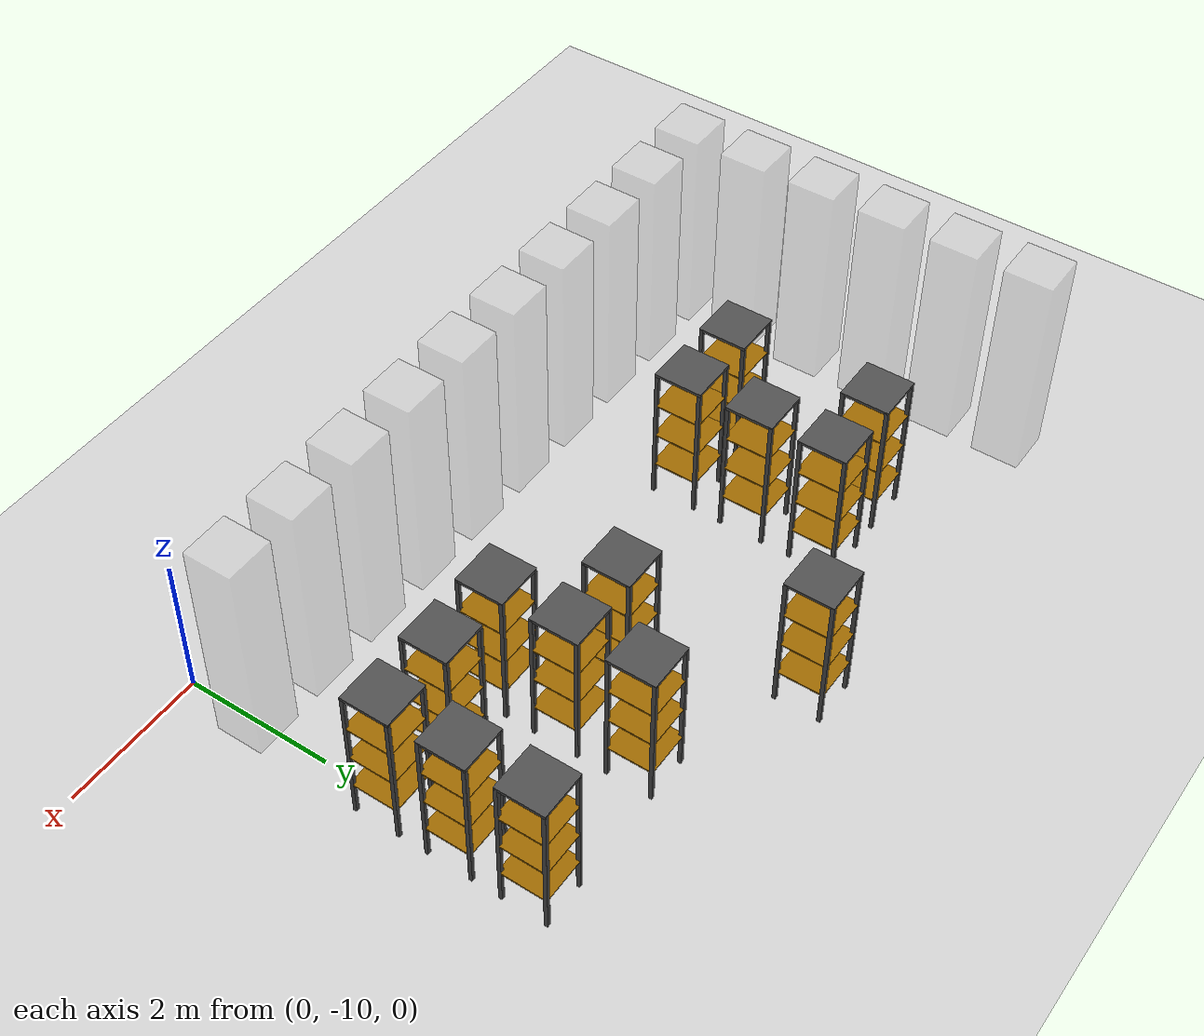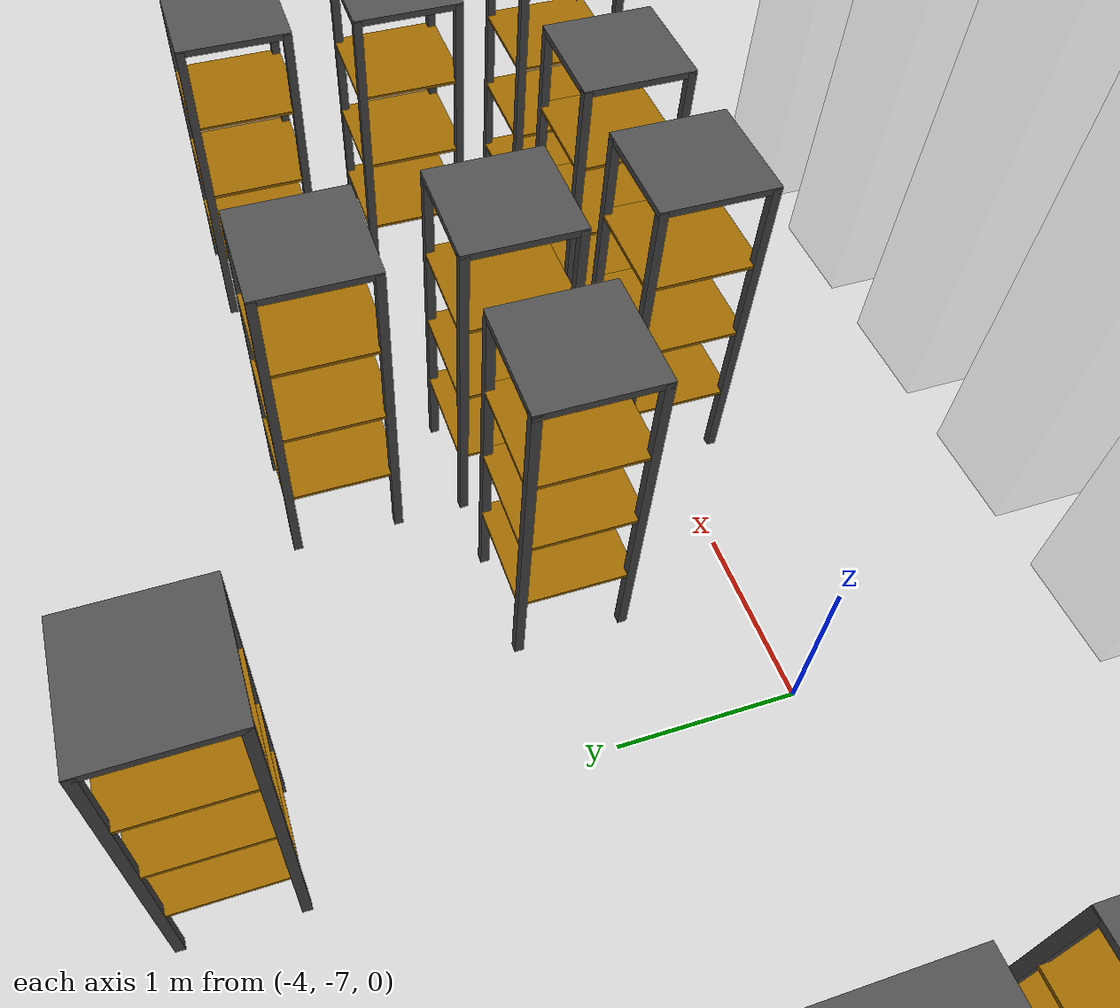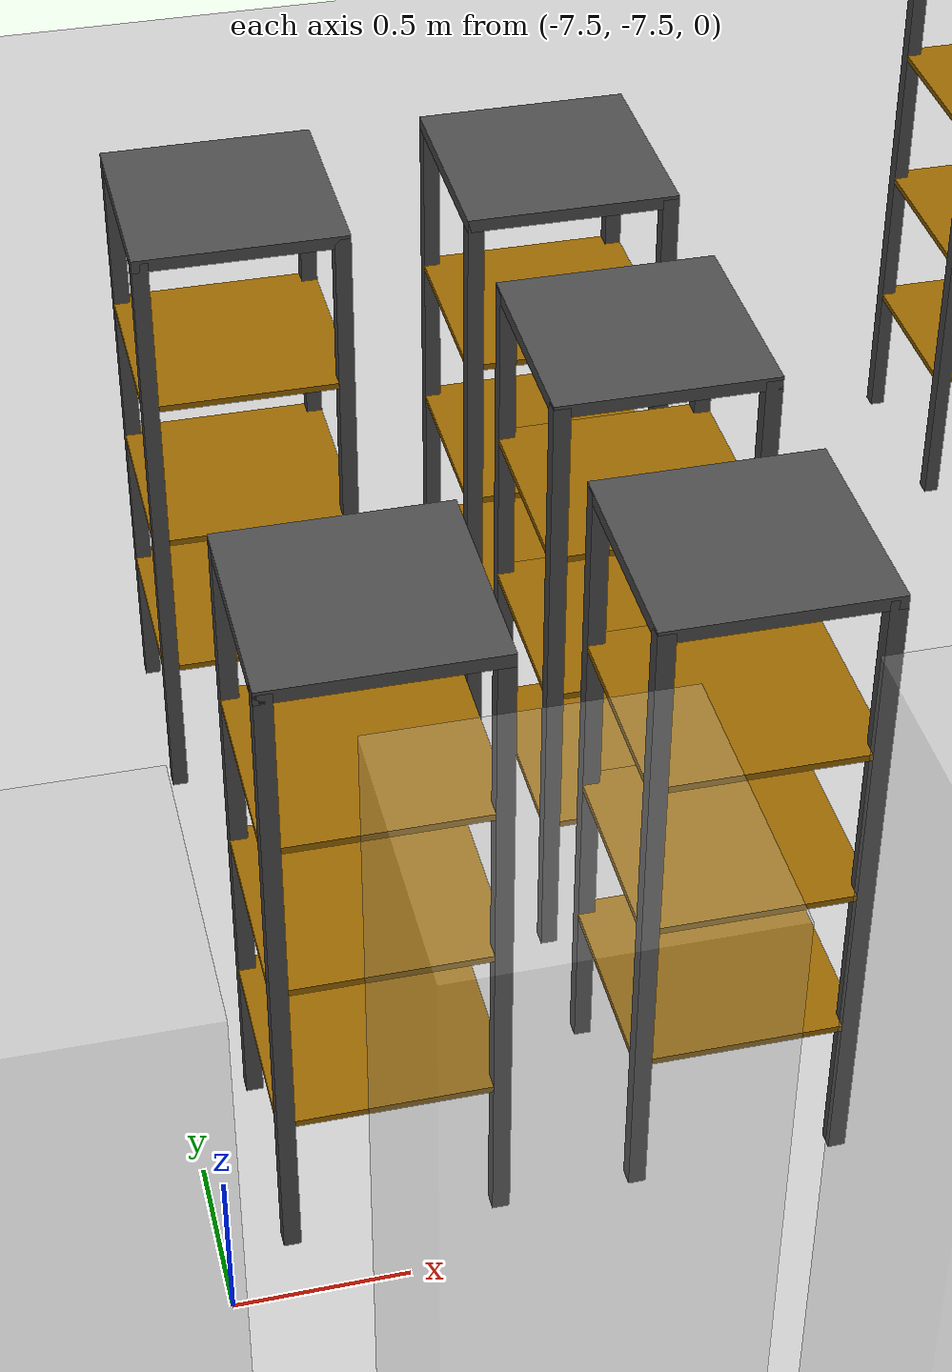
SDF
<sdf version="1.6">
 <world name="default">
  <model name="ground_plane">
   <static>1</static>
   <link name="link">
    <collision name="collision">
     <geometry><plane><normal>0 0 1</normal><size>50 50</size></plane></geometry>
     <surface><friction><ode><mu>100</mu><mu2>50</mu2></ode></friction></surface>
    </collision>
    <visual name="visual">
     <cast_shadows>0</cast_shadows>
     <geometry><plane><normal>0 0 1</normal><size>100 100</size></plane></geometry>
     <material>
      <script><uri>file://media/materials/scripts/gazebo.material</uri><name>Gazebo/Grey</name></script>
     </material>
    </visual>
    <velocity_decay><linear>0</linear><angular>0</angular></velocity_decay>
   </link>
  </model>
  <model name="pole_0_0">
   <static>1</static>
   <link name="main_block">
    <pose>0 0 1.5 0 -0 0</pose>
    <collision name="collision"><geometry><box><size>0.65 0.65 3</size></box></geometry></collision>
    <visual name="visual">
     <geometry><box><size>0.65 0.65 3</size></box></geometry>
     <material><ambient>0.5 0.5 0.5 0.25</ambient><diffuse>0.75 0.75 0.75 0.25</diffuse></material>
    </visual>
   </link>
   <pose>-9 -9 0 0 -0 0</pose>
  </model>
  <model name="pole_0_1">
   <static>1</static>
   <link name="main_block">
    <pose>0 0 1.5 0 -0 0</pose>
    <collision name="collision"><geometry><box><size>0.65 0.65 3</size></box></geometry></collision>
    <visual name="visual">
     <geometry><box><size>0.65 0.65 3</size></box></geometry>
     <material><ambient>0.5 0.5 0.5 0.25</ambient><diffuse>0.75 0.75 0.75 0.25</diffuse></material>
    </visual>
   </link>
   <pose>-8 -9 0 0 -0 0</pose>
  </model>
  <model name="pole_0_2">
   <static>1</static>
   <link name="main_block">
    <pose>0 0 1.5 0 -0 0</pose>
    <collision name="collision"><geometry><box><size>0.65 0.65 3</size></box></geometry></collision>
    <visual name="visual">
     <geometry><box><size>0.65 0.65 3</size></box></geometry>
     <material><ambient>0.5 0.5 0.5 0.25</ambient><diffuse>0.75 0.75 0.75 0.25</diffuse></material>
    </visual>
   </link>
   <pose>-7 -9 0 0 -0 0</pose>
  </model>
  <model name="pole_0_3">
   <static>1</static>
   <link name="main_block">
    <pose>0 0 1.5 0 -0 0</pose>
    <collision name="collision"><geometry><box><size>0.65 0.65 3</size></box></geometry></collision>
    <visual name="visual">
     <geometry><box><size>0.65 0.65 3</size></box></geometry>
     <material><ambient>0.5 0.5 0.5 0.25</ambient><diffuse>0.75 0.75 0.75 0.25</diffuse></material>
    </visual>
   </link>
   <pose>-6 -9 0 0 -0 0</pose>
  </model>
  <model name="pole_0_4">
   <static>1</static>
   <link name="main_block">
    <pose>0 0 1.5 0 -0 0</pose>
    <collision name="collision"><geometry><box><size>0.65 0.65 3</size></box></geometry></collision>
    <visual name="visual">
     <geometry><box><size>0.65 0.65 3</size></box></geometry>
     <material><ambient>0.5 0.5 0.5 0.25</ambient><diffuse>0.75 0.75 0.75 0.25</diffuse></material>
    </visual>
   </link>
   <pose>-5 -9 0 0 -0 0</pose>
  </model>
  <model name="pole_0_5">
   <static>1</static>
   <link name="main_block">
    <pose>0 0 1.5 0 -0 0</pose>
    <collision name="collision"><geometry><box><size>0.65 0.65 3</size></box></geometry></collision>
    <visual name="visual">
     <geometry><box><size>0.65 0.65 3</size></box></geometry>
     <material><ambient>0.5 0.5 0.5 0.25</ambient><diffuse>0.75 0.75 0.75 0.25</diffuse></material>
    </visual>
   </link>
   <pose>-4 -9 0 0 -0 0</pose>
  </model>
  <model name="pole_0_6">
   <static>1</static>
   <link name="main_block">
    <pose>0 0 1.5 0 -0 0</pose>
    <collision name="collision"><geometry><box><size>0.65 0.65 3</size></box></geometry></collision>
    <visual name="visual">
     <geometry><box><size>0.65 0.65 3</size></box></geometry>
     <material><ambient>0.5 0.5 0.5 0.25</ambient><diffuse>0.75 0.75 0.75 0.25</diffuse></material>
    </visual>
   </link>
   <pose>-3 -9 0 0 -0 0</pose>
  </model>
  <model name="pole_0_7">
   <static>1</static>
   <link name="main_block">
    <pose>0 0 1.5 0 -0 0</pose>
    <collision name="collision"><geometry><box><size>0.65 0.65 3</size></box></geometry></collision>
    <visual name="visual">
     <geometry><box><size>0.65 0.65 3</size></box></geometry>
     <material><ambient>0.5 0.5 0.5 0.25</ambient><diffuse>0.75 0.75 0.75 0.25</diffuse></material>
    </visual>
   </link>
   <pose>-2 -9 0 0 -0 0</pose>
  </model>
  <model name="pole_0_8">
   <static>1</static>
   <link name="main_block">
    <pose>0 0 1.5 0 -0 0</pose>
    <collision name="collision"><geometry><box><size>0.65 0.65 3</size></box></geometry></collision>
    <visual name="visual">
     <geometry><box><size>0.65 0.65 3</size></box></geometry>
     <material><ambient>0.5 0.5 0.5 0.25</ambient><diffuse>0.75 0.75 0.75 0.25</diffuse></material>
    </visual>
   </link>
   <pose>-1 -9 0 0 -0 0</pose>
  </model>
  <model name="pole_0_9">
   <static>1</static>
   <link name="main_block">
    <pose>0 0 1.5 0 -0 0</pose>
    <collision name="collision"><geometry><box><size>0.65 0.65 3</size></box></geometry></collision>
    <visual name="visual">
     <geometry><box><size>0.65 0.65 3</size></box></geometry>
     <material><ambient>0.5 0.5 0.5 0.25</ambient><diffuse>0.75 0.75 0.75 0.25</diffuse></material>
    </visual>
   </link>
   <pose>0 -9 0 0 -0 0</pose>
  </model>
  <model name="pole_1_0">
   <static>1</static>
   <link name="main_block">
    <pose>0 0 1.5 0 -0 0</pose>
    <collision name="collision"><geometry><box><size>0.65 0.65 3</size></box></geometry></collision>
    <visual name="visual">
     <geometry><box><size>0.65 0.65 3</size></box></geometry>
     <material><ambient>0.5 0.5 0.5 0.25</ambient><diffuse>0.75 0.75 0.75 0.25</diffuse></material>
    </visual>
   </link>
   <pose>-9 -8 0 0 -0 0</pose>
  </model>
  <model name="pole_2_0">
   <static>1</static>
   <link name="main_block">
    <pose>0 0 1.5 0 -0 0</pose>
    <collision name="collision"><geometry><box><size>0.65 0.65 3</size></box></geometry></collision>
    <visual name="visual">
     <geometry><box><size>0.65 0.65 3</size></box></geometry>
     <material><ambient>0.5 0.5 0.5 0.25</ambient><diffuse>0.75 0.75 0.75 0.25</diffuse></material>
    </visual>
   </link>
   <pose>-9 -7 0 0 -0 0</pose>
  </model>
  <model name="warehouse_shelf_2_2">
   <static>1</static>
   <link name="main_block">
    <pose>0 0 1.25 0 -0 0</pose>
    <collision name="collision"><geometry><box><size>0.65 0.65 1.5</size></box></geometry></collision>
   </link>
   <link name="leg_1">
    <pose>0.3 0.3 1 0 -0 0</pose>
    <collision name="collision"><geometry><box><size>0.05 0.05 2</size></box></geometry></collision>
    <visual name="visual">
     <geometry><box><size>0.05 0.05 2</size></box></geometry>
     <material><ambient>0.2 0.2 0.2 1</ambient><diffuse>0.3 0.3 0.3 1</diffuse></material>
    </visual>
   </link>
   <link name="leg_2">
    <pose>-0.3 0.3 1 0 -0 0</pose>
    <collision name="collision"><geometry><box><size>0.05 0.05 2</size></box></geometry></collision>
    <visual name="visual">
     <geometry><box><size>0.05 0.05 2</size></box></geometry>
     <material><ambient>0.2 0.2 0.2 1</ambient><diffuse>0.3 0.3 0.3 1</diffuse></material>
    </visual>
   </link>
   <link name="leg_3">
    <pose>-0.3 -0.3 1 0 -0 0</pose>
    <collision name="collision"><geometry><box><size>0.05 0.05 2</size></box></geometry></collision>
    <visual name="visual">
     <geometry><box><size>0.05 0.05 2</size></box></geometry>
     <material><ambient>0.2 0.2 0.2 1</ambient><diffuse>0.3 0.3 0.3 1</diffuse></material>
    </visual>
   </link>
   <link name="leg_4">
    <pose>0.3 -0.3 1 0 -0 0</pose>
    <collision name="collision"><geometry><box><size>0.05 0.05 2</size></box></geometry></collision>
    <visual name="visual">
     <geometry><box><size>0.05 0.05 2</size></box></geometry>
     <material><ambient>0.2 0.2 0.2 1</ambient><diffuse>0.3 0.3 0.3 1</diffuse></material>
    </visual>
   </link>
   <link name="shelf_0">
    <pose>0 0 0.49 0 -0 0</pose>
    <visual name="visual">
     <geometry><box><size>0.649 0.649 0.02</size></box></geometry>
     <material><ambient>0.2 0.05 0 1</ambient><diffuse>0.6 0.4 0 1</diffuse></material>
    </visual>
   </link>
   <link name="shelf_1">
    <pose>0 0 0.99 0 -0 0</pose>
    <visual name="visual">
     <geometry><box><size>0.649 0.649 0.02</size></box></geometry>
     <material><ambient>0.2 0.05 0 1</ambient><diffuse>0.6 0.4 0 1</diffuse></material>
    </visual>
   </link>
   <link name="shelf_2">
    <pose>0 0 1.49 0 -0 0</pose>
    <visual name="visual">
     <geometry><box><size>0.649 0.649 0.02</size></box></geometry>
     <material><ambient>0.2 0.05 0 1</ambient><diffuse>0.6 0.4 0 1</diffuse></material>
    </visual>
   </link>
   <link name="shelf_top">
    <pose>0 0 1.99 0 -0 0</pose>
    <visual name="visual">
     <geometry><box><size>0.65 0.65 0.04</size></box></geometry>
     <material><ambient>0.2 0.2 0.2 1</ambient><diffuse>0.3 0.3 0.3 1</diffuse></material>
    </visual>
   </link>
   <pose>-7 -7 0 0 -0 0</pose>
  </model>
  <model name="warehouse_shelf_2_3">
   <static>1</static>
   <link name="main_block">
    <pose>0 0 1.25 0 -0 0</pose>
    <collision name="collision"><geometry><box><size>0.65 0.65 1.5</size></box></geometry></collision>
   </link>
   <link name="leg_1">
    <pose>0.3 0.3 1 0 -0 0</pose>
    <collision name="collision"><geometry><box><size>0.05 0.05 2</size></box></geometry></collision>
    <visual name="visual">
     <geometry><box><size>0.05 0.05 2</size></box></geometry>
     <material><ambient>0.2 0.2 0.2 1</ambient><diffuse>0.3 0.3 0.3 1</diffuse></material>
    </visual>
   </link>
   <link name="leg_2">
    <pose>-0.3 0.3 1 0 -0 0</pose>
    <collision name="collision"><geometry><box><size>0.05 0.05 2</size></box></geometry></collision>
    <visual name="visual">
     <geometry><box><size>0.05 0.05 2</size></box></geometry>
     <material><ambient>0.2 0.2 0.2 1</ambient><diffuse>0.3 0.3 0.3 1</diffuse></material>
    </visual>
   </link>
   <link name="leg_3">
    <pose>-0.3 -0.3 1 0 -0 0</pose>
    <collision name="collision"><geometry><box><size>0.05 0.05 2</size></box></geometry></collision>
    <visual name="visual">
     <geometry><box><size>0.05 0.05 2</size></box></geometry>
     <material><ambient>0.2 0.2 0.2 1</ambient><diffuse>0.3 0.3 0.3 1</diffuse></material>
    </visual>
   </link>
   <link name="leg_4">
    <pose>0.3 -0.3 1 0 -0 0</pose>
    <collision name="collision"><geometry><box><size>0.05 0.05 2</size></box></geometry></collision>
    <visual name="visual">
     <geometry><box><size>0.05 0.05 2</size></box></geometry>
     <material><ambient>0.2 0.2 0.2 1</ambient><diffuse>0.3 0.3 0.3 1</diffuse></material>
    </visual>
   </link>
   <link name="shelf_0">
    <pose>0 0 0.49 0 -0 0</pose>
    <visual name="visual">
     <geometry><box><size>0.649 0.649 0.02</size></box></geometry>
     <material><ambient>0.2 0.05 0 1</ambient><diffuse>0.6 0.4 0 1</diffuse></material>
    </visual>
   </link>
   <link name="shelf_1">
    <pose>0 0 0.99 0 -0 0</pose>
    <visual name="visual">
     <geometry><box><size>0.649 0.649 0.02</size></box></geometry>
     <material><ambient>0.2 0.05 0 1</ambient><diffuse>0.6 0.4 0 1</diffuse></material>
    </visual>
   </link>
   <link name="shelf_2">
    <pose>0 0 1.49 0 -0 0</pose>
    <visual name="visual">
     <geometry><box><size>0.649 0.649 0.02</size></box></geometry>
     <material><ambient>0.2 0.05 0 1</ambient><diffuse>0.6 0.4 0 1</diffuse></material>
    </visual>
   </link>
   <link name="shelf_top">
    <pose>0 0 1.99 0 -0 0</pose>
    <visual name="visual">
     <geometry><box><size>0.65 0.65 0.04</size></box></geometry>
     <material><ambient>0.2 0.2 0.2 1</ambient><diffuse>0.3 0.3 0.3 1</diffuse></material>
    </visual>
   </link>
   <pose>-6 -7 0 0 -0 0</pose>
  </model>
  <model name="warehouse_shelf_2_7">
   <static>1</static>
   <link name="main_block">
    <pose>0 0 1.25 0 -0 0</pose>
    <collision name="collision"><geometry><box><size>0.65 0.65 1.5</size></box></geometry></collision>
   </link>
   <link name="leg_1">
    <pose>0.3 0.3 1 0 -0 0</pose>
    <collision name="collision"><geometry><box><size>0.05 0.05 2</size></box></geometry></collision>
    <visual name="visual">
     <geometry><box><size>0.05 0.05 2</size></box></geometry>
     <material><ambient>0.2 0.2 0.2 1</ambient><diffuse>0.3 0.3 0.3 1</diffuse></material>
    </visual>
   </link>
   <link name="leg_2">
    <pose>-0.3 0.3 1 0 -0 0</pose>
    <collision name="collision"><geometry><box><size>0.05 0.05 2</size></box></geometry></collision>
    <visual name="visual">
     <geometry><box><size>0.05 0.05 2</size></box></geometry>
     <material><ambient>0.2 0.2 0.2 1</ambient><diffuse>0.3 0.3 0.3 1</diffuse></material>
    </visual>
   </link>
   <link name="leg_3">
    <pose>-0.3 -0.3 1 0 -0 0</pose>
    <collision name="collision"><geometry><box><size>0.05 0.05 2</size></box></geometry></collision>
    <visual name="visual">
     <geometry><box><size>0.05 0.05 2</size></box></geometry>
     <material><ambient>0.2 0.2 0.2 1</ambient><diffuse>0.3 0.3 0.3 1</diffuse></material>
    </visual>
   </link>
   <link name="leg_4">
    <pose>0.3 -0.3 1 0 -0 0</pose>
    <collision name="collision"><geometry><box><size>0.05 0.05 2</size></box></geometry></collision>
    <visual name="visual">
     <geometry><box><size>0.05 0.05 2</size></box></geometry>
     <material><ambient>0.2 0.2 0.2 1</ambient><diffuse>0.3 0.3 0.3 1</diffuse></material>
    </visual>
   </link>
   <link name="shelf_0">
    <pose>0 0 0.49 0 -0 0</pose>
    <visual name="visual">
     <geometry><box><size>0.649 0.649 0.02</size></box></geometry>
     <material><ambient>0.2 0.05 0 1</ambient><diffuse>0.6 0.4 0 1</diffuse></material>
    </visual>
   </link>
   <link name="shelf_1">
    <pose>0 0 0.99 0 -0 0</pose>
    <visual name="visual">
     <geometry><box><size>0.649 0.649 0.02</size></box></geometry>
     <material><ambient>0.2 0.05 0 1</ambient><diffuse>0.6 0.4 0 1</diffuse></material>
    </visual>
   </link>
   <link name="shelf_2">
    <pose>0 0 1.49 0 -0 0</pose>
    <visual name="visual">
     <geometry><box><size>0.649 0.649 0.02</size></box></geometry>
     <material><ambient>0.2 0.05 0 1</ambient><diffuse>0.6 0.4 0 1</diffuse></material>
    </visual>
   </link>
   <link name="shelf_top">
    <pose>0 0 1.99 0 -0 0</pose>
    <visual name="visual">
     <geometry><box><size>0.65 0.65 0.04</size></box></geometry>
     <material><ambient>0.2 0.2 0.2 1</ambient><diffuse>0.3 0.3 0.3 1</diffuse></material>
    </visual>
   </link>
   <pose>-2 -7 0 0 -0 0</pose>
  </model>
  <model name="warehouse_shelf_2_8">
   <static>1</static>
   <link name="main_block">
    <pose>0 0 1.25 0 -0 0</pose>
    <collision name="collision"><geometry><box><size>0.65 0.65 1.5</size></box></geometry></collision>
   </link>
   <link name="leg_1">
    <pose>0.3 0.3 1 0 -0 0</pose>
    <collision name="collision"><geometry><box><size>0.05 0.05 2</size></box></geometry></collision>
    <visual name="visual">
     <geometry><box><size>0.05 0.05 2</size></box></geometry>
     <material><ambient>0.2 0.2 0.2 1</ambient><diffuse>0.3 0.3 0.3 1</diffuse></material>
    </visual>
   </link>
   <link name="leg_2">
    <pose>-0.3 0.3 1 0 -0 0</pose>
    <collision name="collision"><geometry><box><size>0.05 0.05 2</size></box></geometry></collision>
    <visual name="visual">
     <geometry><box><size>0.05 0.05 2</size></box></geometry>
     <material><ambient>0.2 0.2 0.2 1</ambient><diffuse>0.3 0.3 0.3 1</diffuse></material>
    </visual>
   </link>
   <link name="leg_3">
    <pose>-0.3 -0.3 1 0 -0 0</pose>
    <collision name="collision"><geometry><box><size>0.05 0.05 2</size></box></geometry></collision>
    <visual name="visual">
     <geometry><box><size>0.05 0.05 2</size></box></geometry>
     <material><ambient>0.2 0.2 0.2 1</ambient><diffuse>0.3 0.3 0.3 1</diffuse></material>
    </visual>
   </link>
   <link name="leg_4">
    <pose>0.3 -0.3 1 0 -0 0</pose>
    <collision name="collision"><geometry><box><size>0.05 0.05 2</size></box></geometry></collision>
    <visual name="visual">
     <geometry><box><size>0.05 0.05 2</size></box></geometry>
     <material><ambient>0.2 0.2 0.2 1</ambient><diffuse>0.3 0.3 0.3 1</diffuse></material>
    </visual>
   </link>
   <link name="shelf_0">
    <pose>0 0 0.49 0 -0 0</pose>
    <visual name="visual">
     <geometry><box><size>0.649 0.649 0.02</size></box></geometry>
     <material><ambient>0.2 0.05 0 1</ambient><diffuse>0.6 0.4 0 1</diffuse></material>
    </visual>
   </link>
   <link name="shelf_1">
    <pose>0 0 0.99 0 -0 0</pose>
    <visual name="visual">
     <geometry><box><size>0.649 0.649 0.02</size></box></geometry>
     <material><ambient>0.2 0.05 0 1</ambient><diffuse>0.6 0.4 0 1</diffuse></material>
    </visual>
   </link>
   <link name="shelf_2">
    <pose>0 0 1.49 0 -0 0</pose>
    <visual name="visual">
     <geometry><box><size>0.649 0.649 0.02</size></box></geometry>
     <material><ambient>0.2 0.05 0 1</ambient><diffuse>0.6 0.4 0 1</diffuse></material>
    </visual>
   </link>
   <link name="shelf_top">
    <pose>0 0 1.99 0 -0 0</pose>
    <visual name="visual">
     <geometry><box><size>0.65 0.65 0.04</size></box></geometry>
     <material><ambient>0.2 0.2 0.2 1</ambient><diffuse>0.3 0.3 0.3 1</diffuse></material>
    </visual>
   </link>
   <pose>-1 -7 0 0 -0 0</pose>
  </model>
  <model name="warehouse_shelf_2_9">
   <static>1</static>
   <link name="main_block">
    <pose>0 0 1.25 0 -0 0</pose>
    <collision name="collision"><geometry><box><size>0.65 0.65 1.5</size></box></geometry></collision>
   </link>
   <link name="leg_1">
    <pose>0.3 0.3 1 0 -0 0</pose>
    <collision name="collision"><geometry><box><size>0.05 0.05 2</size></box></geometry></collision>
    <visual name="visual">
     <geometry><box><size>0.05 0.05 2</size></box></geometry>
     <material><ambient>0.2 0.2 0.2 1</ambient><diffuse>0.3 0.3 0.3 1</diffuse></material>
    </visual>
   </link>
   <link name="leg_2">
    <pose>-0.3 0.3 1 0 -0 0</pose>
    <collision name="collision"><geometry><box><size>0.05 0.05 2</size></box></geometry></collision>
    <visual name="visual">
     <geometry><box><size>0.05 0.05 2</size></box></geometry>
     <material><ambient>0.2 0.2 0.2 1</ambient><diffuse>0.3 0.3 0.3 1</diffuse></material>
    </visual>
   </link>
   <link name="leg_3">
    <pose>-0.3 -0.3 1 0 -0 0</pose>
    <collision name="collision"><geometry><box><size>0.05 0.05 2</size></box></geometry></collision>
    <visual name="visual">
     <geometry><box><size>0.05 0.05 2</size></box></geometry>
     <material><ambient>0.2 0.2 0.2 1</ambient><diffuse>0.3 0.3 0.3 1</diffuse></material>
    </visual>
   </link>
   <link name="leg_4">
    <pose>0.3 -0.3 1 0 -0 0</pose>
    <collision name="collision"><geometry><box><size>0.05 0.05 2</size></box></geometry></collision>
    <visual name="visual">
     <geometry><box><size>0.05 0.05 2</size></box></geometry>
     <material><ambient>0.2 0.2 0.2 1</ambient><diffuse>0.3 0.3 0.3 1</diffuse></material>
    </visual>
   </link>
   <link name="shelf_0">
    <pose>0 0 0.49 0 -0 0</pose>
    <visual name="visual">
     <geometry><box><size>0.649 0.649 0.02</size></box></geometry>
     <material><ambient>0.2 0.05 0 1</ambient><diffuse>0.6 0.4 0 1</diffuse></material>
    </visual>
   </link>
   <link name="shelf_1">
    <pose>0 0 0.99 0 -0 0</pose>
    <visual name="visual">
     <geometry><box><size>0.649 0.649 0.02</size></box></geometry>
     <material><ambient>0.2 0.05 0 1</ambient><diffuse>0.6 0.4 0 1</diffuse></material>
    </visual>
   </link>
   <link name="shelf_2">
    <pose>0 0 1.49 0 -0 0</pose>
    <visual name="visual">
     <geometry><box><size>0.649 0.649 0.02</size></box></geometry>
     <material><ambient>0.2 0.05 0 1</ambient><diffuse>0.6 0.4 0 1</diffuse></material>
    </visual>
   </link>
   <link name="shelf_top">
    <pose>0 0 1.99 0 -0 0</pose>
    <visual name="visual">
     <geometry><box><size>0.65 0.65 0.04</size></box></geometry>
     <material><ambient>0.2 0.2 0.2 1</ambient><diffuse>0.3 0.3 0.3 1</diffuse></material>
    </visual>
   </link>
   <pose>0 -7 0 0 -0 0</pose>
  </model>
  <model name="pole_3_0">
   <static>1</static>
   <link name="main_block">
    <pose>0 0 1.5 0 -0 0</pose>
    <collision name="collision"><geometry><box><size>0.65 0.65 3</size></box></geometry></collision>
    <visual name="visual">
     <geometry><box><size>0.65 0.65 3</size></box></geometry>
     <material><ambient>0.5 0.5 0.5 0.25</ambient><diffuse>0.75 0.75 0.75 0.25</diffuse></material>
    </visual>
   </link>
   <pose>-9 -6 0 0 -0 0</pose>
  </model>
  <model name="warehouse_shelf_3_3">
   <static>1</static>
   <link name="main_block">
    <pose>0 0 1.25 0 -0 0</pose>
    <collision name="collision"><geometry><box><size>0.65 0.65 1.5</size></box></geometry></collision>
   </link>
   <link name="leg_1">
    <pose>0.3 0.3 1 0 -0 0</pose>
    <collision name="collision"><geometry><box><size>0.05 0.05 2</size></box></geometry></collision>
    <visual name="visual">
     <geometry><box><size>0.05 0.05 2</size></box></geometry>
     <material><ambient>0.2 0.2 0.2 1</ambient><diffuse>0.3 0.3 0.3 1</diffuse></material>
    </visual>
   </link>
   <link name="leg_2">
    <pose>-0.3 0.3 1 0 -0 0</pose>
    <collision name="collision"><geometry><box><size>0.05 0.05 2</size></box></geometry></collision>
    <visual name="visual">
     <geometry><box><size>0.05 0.05 2</size></box></geometry>
     <material><ambient>0.2 0.2 0.2 1</ambient><diffuse>0.3 0.3 0.3 1</diffuse></material>
    </visual>
   </link>
   <link name="leg_3">
    <pose>-0.3 -0.3 1 0 -0 0</pose>
    <collision name="collision"><geometry><box><size>0.05 0.05 2</size></box></geometry></collision>
    <visual name="visual">
     <geometry><box><size>0.05 0.05 2</size></box></geometry>
     <material><ambient>0.2 0.2 0.2 1</ambient><diffuse>0.3 0.3 0.3 1</diffuse></material>
    </visual>
   </link>
   <link name="leg_4">
    <pose>0.3 -0.3 1 0 -0 0</pose>
    <collision name="collision"><geometry><box><size>0.05 0.05 2</size></box></geometry></collision>
    <visual name="visual">
     <geometry><box><size>0.05 0.05 2</size></box></geometry>
     <material><ambient>0.2 0.2 0.2 1</ambient><diffuse>0.3 0.3 0.3 1</diffuse></material>
    </visual>
   </link>
   <link name="shelf_0">
    <pose>0 0 0.49 0 -0 0</pose>
    <visual name="visual">
     <geometry><box><size>0.649 0.649 0.02</size></box></geometry>
     <material><ambient>0.2 0.05 0 1</ambient><diffuse>0.6 0.4 0 1</diffuse></material>
    </visual>
   </link>
   <link name="shelf_1">
    <pose>0 0 0.99 0 -0 0</pose>
    <visual name="visual">
     <geometry><box><size>0.649 0.649 0.02</size></box></geometry>
     <material><ambient>0.2 0.05 0 1</ambient><diffuse>0.6 0.4 0 1</diffuse></material>
    </visual>
   </link>
   <link name="shelf_2">
    <pose>0 0 1.49 0 -0 0</pose>
    <visual name="visual">
     <geometry><box><size>0.649 0.649 0.02</size></box></geometry>
     <material><ambient>0.2 0.05 0 1</ambient><diffuse>0.6 0.4 0 1</diffuse></material>
    </visual>
   </link>
   <link name="shelf_top">
    <pose>0 0 1.99 0 -0 0</pose>
    <visual name="visual">
     <geometry><box><size>0.65 0.65 0.04</size></box></geometry>
     <material><ambient>0.2 0.2 0.2 1</ambient><diffuse>0.3 0.3 0.3 1</diffuse></material>
    </visual>
   </link>
   <pose>-6 -6 0 0 -0 0</pose>
  </model>
  <model name="warehouse_shelf_3_6">
   <static>1</static>
   <link name="main_block">
    <pose>0 0 1.25 0 -0 0</pose>
    <collision name="collision"><geometry><box><size>0.65 0.65 1.5</size></box></geometry></collision>
   </link>
   <link name="leg_1">
    <pose>0.3 0.3 1 0 -0 0</pose>
    <collision name="collision"><geometry><box><size>0.05 0.05 2</size></box></geometry></collision>
    <visual name="visual">
     <geometry><box><size>0.05 0.05 2</size></box></geometry>
     <material><ambient>0.2 0.2 0.2 1</ambient><diffuse>0.3 0.3 0.3 1</diffuse></material>
    </visual>
   </link>
   <link name="leg_2">
    <pose>-0.3 0.3 1 0 -0 0</pose>
    <collision name="collision"><geometry><box><size>0.05 0.05 2</size></box></geometry></collision>
    <visual name="visual">
     <geometry><box><size>0.05 0.05 2</size></box></geometry>
     <material><ambient>0.2 0.2 0.2 1</ambient><diffuse>0.3 0.3 0.3 1</diffuse></material>
    </visual>
   </link>
   <link name="leg_3">
    <pose>-0.3 -0.3 1 0 -0 0</pose>
    <collision name="collision"><geometry><box><size>0.05 0.05 2</size></box></geometry></collision>
    <visual name="visual">
     <geometry><box><size>0.05 0.05 2</size></box></geometry>
     <material><ambient>0.2 0.2 0.2 1</ambient><diffuse>0.3 0.3 0.3 1</diffuse></material>
    </visual>
   </link>
   <link name="leg_4">
    <pose>0.3 -0.3 1 0 -0 0</pose>
    <collision name="collision"><geometry><box><size>0.05 0.05 2</size></box></geometry></collision>
    <visual name="visual">
     <geometry><box><size>0.05 0.05 2</size></box></geometry>
     <material><ambient>0.2 0.2 0.2 1</ambient><diffuse>0.3 0.3 0.3 1</diffuse></material>
    </visual>
   </link>
   <link name="shelf_0">
    <pose>0 0 0.49 0 -0 0</pose>
    <visual name="visual">
     <geometry><box><size>0.649 0.649 0.02</size></box></geometry>
     <material><ambient>0.2 0.05 0 1</ambient><diffuse>0.6 0.4 0 1</diffuse></material>
    </visual>
   </link>
   <link name="shelf_1">
    <pose>0 0 0.99 0 -0 0</pose>
    <visual name="visual">
     <geometry><box><size>0.649 0.649 0.02</size></box></geometry>
     <material><ambient>0.2 0.05 0 1</ambient><diffuse>0.6 0.4 0 1</diffuse></material>
    </visual>
   </link>
   <link name="shelf_2">
    <pose>0 0 1.49 0 -0 0</pose>
    <visual name="visual">
     <geometry><box><size>0.649 0.649 0.02</size></box></geometry>
     <material><ambient>0.2 0.05 0 1</ambient><diffuse>0.6 0.4 0 1</diffuse></material>
    </visual>
   </link>
   <link name="shelf_top">
    <pose>0 0 1.99 0 -0 0</pose>
    <visual name="visual">
     <geometry><box><size>0.65 0.65 0.04</size></box></geometry>
     <material><ambient>0.2 0.2 0.2 1</ambient><diffuse>0.3 0.3 0.3 1</diffuse></material>
    </visual>
   </link>
   <pose>-3 -6 0 0 -0 0</pose>
  </model>
  <model name="warehouse_shelf_3_7">
   <static>1</static>
   <link name="main_block">
    <pose>0 0 1.25 0 -0 0</pose>
    <collision name="collision"><geometry><box><size>0.65 0.65 1.5</size></box></geometry></collision>
   </link>
   <link name="leg_1">
    <pose>0.3 0.3 1 0 -0 0</pose>
    <collision name="collision"><geometry><box><size>0.05 0.05 2</size></box></geometry></collision>
    <visual name="visual">
     <geometry><box><size>0.05 0.05 2</size></box></geometry>
     <material><ambient>0.2 0.2 0.2 1</ambient><diffuse>0.3 0.3 0.3 1</diffuse></material>
    </visual>
   </link>
   <link name="leg_2">
    <pose>-0.3 0.3 1 0 -0 0</pose>
    <collision name="collision"><geometry><box><size>0.05 0.05 2</size></box></geometry></collision>
    <visual name="visual">
     <geometry><box><size>0.05 0.05 2</size></box></geometry>
     <material><ambient>0.2 0.2 0.2 1</ambient><diffuse>0.3 0.3 0.3 1</diffuse></material>
    </visual>
   </link>
   <link name="leg_3">
    <pose>-0.3 -0.3 1 0 -0 0</pose>
    <collision name="collision"><geometry><box><size>0.05 0.05 2</size></box></geometry></collision>
    <visual name="visual">
     <geometry><box><size>0.05 0.05 2</size></box></geometry>
     <material><ambient>0.2 0.2 0.2 1</ambient><diffuse>0.3 0.3 0.3 1</diffuse></material>
    </visual>
   </link>
   <link name="leg_4">
    <pose>0.3 -0.3 1 0 -0 0</pose>
    <collision name="collision"><geometry><box><size>0.05 0.05 2</size></box></geometry></collision>
    <visual name="visual">
     <geometry><box><size>0.05 0.05 2</size></box></geometry>
     <material><ambient>0.2 0.2 0.2 1</ambient><diffuse>0.3 0.3 0.3 1</diffuse></material>
    </visual>
   </link>
   <link name="shelf_0">
    <pose>0 0 0.49 0 -0 0</pose>
    <visual name="visual">
     <geometry><box><size>0.649 0.649 0.02</size></box></geometry>
     <material><ambient>0.2 0.05 0 1</ambient><diffuse>0.6 0.4 0 1</diffuse></material>
    </visual>
   </link>
   <link name="shelf_1">
    <pose>0 0 0.99 0 -0 0</pose>
    <visual name="visual">
     <geometry><box><size>0.649 0.649 0.02</size></box></geometry>
     <material><ambient>0.2 0.05 0 1</ambient><diffuse>0.6 0.4 0 1</diffuse></material>
    </visual>
   </link>
   <link name="shelf_2">
    <pose>0 0 1.49 0 -0 0</pose>
    <visual name="visual">
     <geometry><box><size>0.649 0.649 0.02</size></box></geometry>
     <material><ambient>0.2 0.05 0 1</ambient><diffuse>0.6 0.4 0 1</diffuse></material>
    </visual>
   </link>
   <link name="shelf_top">
    <pose>0 0 1.99 0 -0 0</pose>
    <visual name="visual">
     <geometry><box><size>0.65 0.65 0.04</size></box></geometry>
     <material><ambient>0.2 0.2 0.2 1</ambient><diffuse>0.3 0.3 0.3 1</diffuse></material>
    </visual>
   </link>
   <pose>-2 -6 0 0 -0 0</pose>
  </model>
  <model name="warehouse_shelf_3_9">
   <static>1</static>
   <link name="main_block">
    <pose>0 0 1.25 0 -0 0</pose>
    <collision name="collision"><geometry><box><size>0.65 0.65 1.5</size></box></geometry></collision>
   </link>
   <link name="leg_1">
    <pose>0.3 0.3 1 0 -0 0</pose>
    <collision name="collision"><geometry><box><size>0.05 0.05 2</size></box></geometry></collision>
    <visual name="visual">
     <geometry><box><size>0.05 0.05 2</size></box></geometry>
     <material><ambient>0.2 0.2 0.2 1</ambient><diffuse>0.3 0.3 0.3 1</diffuse></material>
    </visual>
   </link>
   <link name="leg_2">
    <pose>-0.3 0.3 1 0 -0 0</pose>
    <collision name="collision"><geometry><box><size>0.05 0.05 2</size></box></geometry></collision>
    <visual name="visual">
     <geometry><box><size>0.05 0.05 2</size></box></geometry>
     <material><ambient>0.2 0.2 0.2 1</ambient><diffuse>0.3 0.3 0.3 1</diffuse></material>
    </visual>
   </link>
   <link name="leg_3">
    <pose>-0.3 -0.3 1 0 -0 0</pose>
    <collision name="collision"><geometry><box><size>0.05 0.05 2</size></box></geometry></collision>
    <visual name="visual">
     <geometry><box><size>0.05 0.05 2</size></box></geometry>
     <material><ambient>0.2 0.2 0.2 1</ambient><diffuse>0.3 0.3 0.3 1</diffuse></material>
    </visual>
   </link>
   <link name="leg_4">
    <pose>0.3 -0.3 1 0 -0 0</pose>
    <collision name="collision"><geometry><box><size>0.05 0.05 2</size></box></geometry></collision>
    <visual name="visual">
     <geometry><box><size>0.05 0.05 2</size></box></geometry>
     <material><ambient>0.2 0.2 0.2 1</ambient><diffuse>0.3 0.3 0.3 1</diffuse></material>
    </visual>
   </link>
   <link name="shelf_0">
    <pose>0 0 0.49 0 -0 0</pose>
    <visual name="visual">
     <geometry><box><size>0.649 0.649 0.02</size></box></geometry>
     <material><ambient>0.2 0.05 0 1</ambient><diffuse>0.6 0.4 0 1</diffuse></material>
    </visual>
   </link>
   <link name="shelf_1">
    <pose>0 0 0.99 0 -0 0</pose>
    <visual name="visual">
     <geometry><box><size>0.649 0.649 0.02</size></box></geometry>
     <material><ambient>0.2 0.05 0 1</ambient><diffuse>0.6 0.4 0 1</diffuse></material>
    </visual>
   </link>
   <link name="shelf_2">
    <pose>0 0 1.49 0 -0 0</pose>
    <visual name="visual">
     <geometry><box><size>0.649 0.649 0.02</size></box></geometry>
     <material><ambient>0.2 0.05 0 1</ambient><diffuse>0.6 0.4 0 1</diffuse></material>
    </visual>
   </link>
   <link name="shelf_top">
    <pose>0 0 1.99 0 -0 0</pose>
    <visual name="visual">
     <geometry><box><size>0.65 0.65 0.04</size></box></geometry>
     <material><ambient>0.2 0.2 0.2 1</ambient><diffuse>0.3 0.3 0.3 1</diffuse></material>
    </visual>
   </link>
   <pose>0 -6 0 0 -0 0</pose>
  </model>
  <model name="pole_4_0">
   <static>1</static>
   <link name="main_block">
    <pose>0 0 1.5 0 -0 0</pose>
    <collision name="collision"><geometry><box><size>0.65 0.65 3</size></box></geometry></collision>
    <visual name="visual">
     <geometry><box><size>0.65 0.65 3</size></box></geometry>
     <material><ambient>0.5 0.5 0.5 0.25</ambient><diffuse>0.75 0.75 0.75 0.25</diffuse></material>
    </visual>
   </link>
   <pose>-9 -5 0 0 -0 0</pose>
  </model>
  <model name="warehouse_shelf_4_2">
   <static>1</static>
   <link name="main_block">
    <pose>0 0 1.25 0 -0 0</pose>
    <collision name="collision"><geometry><box><size>0.65 0.65 1.5</size></box></geometry></collision>
   </link>
   <link name="leg_1">
    <pose>0.3 0.3 1 0 -0 0</pose>
    <collision name="collision"><geometry><box><size>0.05 0.05 2</size></box></geometry></collision>
    <visual name="visual">
     <geometry><box><size>0.05 0.05 2</size></box></geometry>
     <material><ambient>0.2 0.2 0.2 1</ambient><diffuse>0.3 0.3 0.3 1</diffuse></material>
    </visual>
   </link>
   <link name="leg_2">
    <pose>-0.3 0.3 1 0 -0 0</pose>
    <collision name="collision"><geometry><box><size>0.05 0.05 2</size></box></geometry></collision>
    <visual name="visual">
     <geometry><box><size>0.05 0.05 2</size></box></geometry>
     <material><ambient>0.2 0.2 0.2 1</ambient><diffuse>0.3 0.3 0.3 1</diffuse></material>
    </visual>
   </link>
   <link name="leg_3">
    <pose>-0.3 -0.3 1 0 -0 0</pose>
    <collision name="collision"><geometry><box><size>0.05 0.05 2</size></box></geometry></collision>
    <visual name="visual">
     <geometry><box><size>0.05 0.05 2</size></box></geometry>
     <material><ambient>0.2 0.2 0.2 1</ambient><diffuse>0.3 0.3 0.3 1</diffuse></material>
    </visual>
   </link>
   <link name="leg_4">
    <pose>0.3 -0.3 1 0 -0 0</pose>
    <collision name="collision"><geometry><box><size>0.05 0.05 2</size></box></geometry></collision>
    <visual name="visual">
     <geometry><box><size>0.05 0.05 2</size></box></geometry>
     <material><ambient>0.2 0.2 0.2 1</ambient><diffuse>0.3 0.3 0.3 1</diffuse></material>
    </visual>
   </link>
   <link name="shelf_0">
    <pose>0 0 0.49 0 -0 0</pose>
    <visual name="visual">
     <geometry><box><size>0.649 0.649 0.02</size></box></geometry>
     <material><ambient>0.2 0.05 0 1</ambient><diffuse>0.6 0.4 0 1</diffuse></material>
    </visual>
   </link>
   <link name="shelf_1">
    <pose>0 0 0.99 0 -0 0</pose>
    <visual name="visual">
     <geometry><box><size>0.649 0.649 0.02</size></box></geometry>
     <material><ambient>0.2 0.05 0 1</ambient><diffuse>0.6 0.4 0 1</diffuse></material>
    </visual>
   </link>
   <link name="shelf_2">
    <pose>0 0 1.49 0 -0 0</pose>
    <visual name="visual">
     <geometry><box><size>0.649 0.649 0.02</size></box></geometry>
     <material><ambient>0.2 0.05 0 1</ambient><diffuse>0.6 0.4 0 1</diffuse></material>
    </visual>
   </link>
   <link name="shelf_top">
    <pose>0 0 1.99 0 -0 0</pose>
    <visual name="visual">
     <geometry><box><size>0.65 0.65 0.04</size></box></geometry>
     <material><ambient>0.2 0.2 0.2 1</ambient><diffuse>0.3 0.3 0.3 1</diffuse></material>
    </visual>
   </link>
   <pose>-7 -5 0 0 -0 0</pose>
  </model>
  <model name="warehouse_shelf_4_3">
   <static>1</static>
   <link name="main_block">
    <pose>0 0 1.25 0 -0 0</pose>
    <collision name="collision"><geometry><box><size>0.65 0.65 1.5</size></box></geometry></collision>
   </link>
   <link name="leg_1">
    <pose>0.3 0.3 1 0 -0 0</pose>
    <collision name="collision"><geometry><box><size>0.05 0.05 2</size></box></geometry></collision>
    <visual name="visual">
     <geometry><box><size>0.05 0.05 2</size></box></geometry>
     <material><ambient>0.2 0.2 0.2 1</ambient><diffuse>0.3 0.3 0.3 1</diffuse></material>
    </visual>
   </link>
   <link name="leg_2">
    <pose>-0.3 0.3 1 0 -0 0</pose>
    <collision name="collision"><geometry><box><size>0.05 0.05 2</size></box></geometry></collision>
    <visual name="visual">
     <geometry><box><size>0.05 0.05 2</size></box></geometry>
     <material><ambient>0.2 0.2 0.2 1</ambient><diffuse>0.3 0.3 0.3 1</diffuse></material>
    </visual>
   </link>
   <link name="leg_3">
    <pose>-0.3 -0.3 1 0 -0 0</pose>
    <collision name="collision"><geometry><box><size>0.05 0.05 2</size></box></geometry></collision>
    <visual name="visual">
     <geometry><box><size>0.05 0.05 2</size></box></geometry>
     <material><ambient>0.2 0.2 0.2 1</ambient><diffuse>0.3 0.3 0.3 1</diffuse></material>
    </visual>
   </link>
   <link name="leg_4">
    <pose>0.3 -0.3 1 0 -0 0</pose>
    <collision name="collision"><geometry><box><size>0.05 0.05 2</size></box></geometry></collision>
    <visual name="visual">
     <geometry><box><size>0.05 0.05 2</size></box></geometry>
     <material><ambient>0.2 0.2 0.2 1</ambient><diffuse>0.3 0.3 0.3 1</diffuse></material>
    </visual>
   </link>
   <link name="shelf_0">
    <pose>0 0 0.49 0 -0 0</pose>
    <visual name="visual">
     <geometry><box><size>0.649 0.649 0.02</size></box></geometry>
     <material><ambient>0.2 0.05 0 1</ambient><diffuse>0.6 0.4 0 1</diffuse></material>
    </visual>
   </link>
   <link name="shelf_1">
    <pose>0 0 0.99 0 -0 0</pose>
    <visual name="visual">
     <geometry><box><size>0.649 0.649 0.02</size></box></geometry>
     <material><ambient>0.2 0.05 0 1</ambient><diffuse>0.6 0.4 0 1</diffuse></material>
    </visual>
   </link>
   <link name="shelf_2">
    <pose>0 0 1.49 0 -0 0</pose>
    <visual name="visual">
     <geometry><box><size>0.649 0.649 0.02</size></box></geometry>
     <material><ambient>0.2 0.05 0 1</ambient><diffuse>0.6 0.4 0 1</diffuse></material>
    </visual>
   </link>
   <link name="shelf_top">
    <pose>0 0 1.99 0 -0 0</pose>
    <visual name="visual">
     <geometry><box><size>0.65 0.65 0.04</size></box></geometry>
     <material><ambient>0.2 0.2 0.2 1</ambient><diffuse>0.3 0.3 0.3 1</diffuse></material>
    </visual>
   </link>
   <pose>-6 -5 0 0 -0 0</pose>
  </model>
  <model name="warehouse_shelf_4_7">
   <static>1</static>
   <link name="main_block">
    <pose>0 0 1.25 0 -0 0</pose>
    <collision name="collision"><geometry><box><size>0.65 0.65 1.5</size></box></geometry></collision>
   </link>
   <link name="leg_1">
    <pose>0.3 0.3 1 0 -0 0</pose>
    <collision name="collision"><geometry><box><size>0.05 0.05 2</size></box></geometry></collision>
    <visual name="visual">
     <geometry><box><size>0.05 0.05 2</size></box></geometry>
     <material><ambient>0.2 0.2 0.2 1</ambient><diffuse>0.3 0.3 0.3 1</diffuse></material>
    </visual>
   </link>
   <link name="leg_2">
    <pose>-0.3 0.3 1 0 -0 0</pose>
    <collision name="collision"><geometry><box><size>0.05 0.05 2</size></box></geometry></collision>
    <visual name="visual">
     <geometry><box><size>0.05 0.05 2</size></box></geometry>
     <material><ambient>0.2 0.2 0.2 1</ambient><diffuse>0.3 0.3 0.3 1</diffuse></material>
    </visual>
   </link>
   <link name="leg_3">
    <pose>-0.3 -0.3 1 0 -0 0</pose>
    <collision name="collision"><geometry><box><size>0.05 0.05 2</size></box></geometry></collision>
    <visual name="visual">
     <geometry><box><size>0.05 0.05 2</size></box></geometry>
     <material><ambient>0.2 0.2 0.2 1</ambient><diffuse>0.3 0.3 0.3 1</diffuse></material>
    </visual>
   </link>
   <link name="leg_4">
    <pose>0.3 -0.3 1 0 -0 0</pose>
    <collision name="collision"><geometry><box><size>0.05 0.05 2</size></box></geometry></collision>
    <visual name="visual">
     <geometry><box><size>0.05 0.05 2</size></box></geometry>
     <material><ambient>0.2 0.2 0.2 1</ambient><diffuse>0.3 0.3 0.3 1</diffuse></material>
    </visual>
   </link>
   <link name="shelf_0">
    <pose>0 0 0.49 0 -0 0</pose>
    <visual name="visual">
     <geometry><box><size>0.649 0.649 0.02</size></box></geometry>
     <material><ambient>0.2 0.05 0 1</ambient><diffuse>0.6 0.4 0 1</diffuse></material>
    </visual>
   </link>
   <link name="shelf_1">
    <pose>0 0 0.99 0 -0 0</pose>
    <visual name="visual">
     <geometry><box><size>0.649 0.649 0.02</size></box></geometry>
     <material><ambient>0.2 0.05 0 1</ambient><diffuse>0.6 0.4 0 1</diffuse></material>
    </visual>
   </link>
   <link name="shelf_2">
    <pose>0 0 1.49 0 -0 0</pose>
    <visual name="visual">
     <geometry><box><size>0.649 0.649 0.02</size></box></geometry>
     <material><ambient>0.2 0.05 0 1</ambient><diffuse>0.6 0.4 0 1</diffuse></material>
    </visual>
   </link>
   <link name="shelf_top">
    <pose>0 0 1.99 0 -0 0</pose>
    <visual name="visual">
     <geometry><box><size>0.65 0.65 0.04</size></box></geometry>
     <material><ambient>0.2 0.2 0.2 1</ambient><diffuse>0.3 0.3 0.3 1</diffuse></material>
    </visual>
   </link>
   <pose>-2 -5 0 0 -0 0</pose>
  </model>
  <model name="warehouse_shelf_4_9">
   <static>1</static>
   <link name="main_block">
    <pose>0 0 1.25 0 -0 0</pose>
    <collision name="collision"><geometry><box><size>0.65 0.65 1.5</size></box></geometry></collision>
   </link>
   <link name="leg_1">
    <pose>0.3 0.3 1 0 -0 0</pose>
    <collision name="collision"><geometry><box><size>0.05 0.05 2</size></box></geometry></collision>
    <visual name="visual">
     <geometry><box><size>0.05 0.05 2</size></box></geometry>
     <material><ambient>0.2 0.2 0.2 1</ambient><diffuse>0.3 0.3 0.3 1</diffuse></material>
    </visual>
   </link>
   <link name="leg_2">
    <pose>-0.3 0.3 1 0 -0 0</pose>
    <collision name="collision"><geometry><box><size>0.05 0.05 2</size></box></geometry></collision>
    <visual name="visual">
     <geometry><box><size>0.05 0.05 2</size></box></geometry>
     <material><ambient>0.2 0.2 0.2 1</ambient><diffuse>0.3 0.3 0.3 1</diffuse></material>
    </visual>
   </link>
   <link name="leg_3">
    <pose>-0.3 -0.3 1 0 -0 0</pose>
    <collision name="collision"><geometry><box><size>0.05 0.05 2</size></box></geometry></collision>
    <visual name="visual">
     <geometry><box><size>0.05 0.05 2</size></box></geometry>
     <material><ambient>0.2 0.2 0.2 1</ambient><diffuse>0.3 0.3 0.3 1</diffuse></material>
    </visual>
   </link>
   <link name="leg_4">
    <pose>0.3 -0.3 1 0 -0 0</pose>
    <collision name="collision"><geometry><box><size>0.05 0.05 2</size></box></geometry></collision>
    <visual name="visual">
     <geometry><box><size>0.05 0.05 2</size></box></geometry>
     <material><ambient>0.2 0.2 0.2 1</ambient><diffuse>0.3 0.3 0.3 1</diffuse></material>
    </visual>
   </link>
   <link name="shelf_0">
    <pose>0 0 0.49 0 -0 0</pose>
    <visual name="visual">
     <geometry><box><size>0.649 0.649 0.02</size></box></geometry>
     <material><ambient>0.2 0.05 0 1</ambient><diffuse>0.6 0.4 0 1</diffuse></material>
    </visual>
   </link>
   <link name="shelf_1">
    <pose>0 0 0.99 0 -0 0</pose>
    <visual name="visual">
     <geometry><box><size>0.649 0.649 0.02</size></box></geometry>
     <material><ambient>0.2 0.05 0 1</ambient><diffuse>0.6 0.4 0 1</diffuse></material>
    </visual>
   </link>
   <link name="shelf_2">
    <pose>0 0 1.49 0 -0 0</pose>
    <visual name="visual">
     <geometry><box><size>0.649 0.649 0.02</size></box></geometry>
     <material><ambient>0.2 0.05 0 1</ambient><diffuse>0.6 0.4 0 1</diffuse></material>
    </visual>
   </link>
   <link name="shelf_top">
    <pose>0 0 1.99 0 -0 0</pose>
    <visual name="visual">
     <geometry><box><size>0.65 0.65 0.04</size></box></geometry>
     <material><ambient>0.2 0.2 0.2 1</ambient><diffuse>0.3 0.3 0.3 1</diffuse></material>
    </visual>
   </link>
   <pose>0 -5 0 0 -0 0</pose>
  </model>
  <model name="pole_5_0">
   <static>1</static>
   <link name="main_block">
    <pose>0 0 1.5 0 -0 0</pose>
    <collision name="collision"><geometry><box><size>0.65 0.65 3</size></box></geometry></collision>
    <visual name="visual">
     <geometry><box><size>0.65 0.65 3</size></box></geometry>
     <material><ambient>0.5 0.5 0.5 0.25</ambient><diffuse>0.75 0.75 0.75 0.25</diffuse></material>
    </visual>
   </link>
   <pose>-9 -4 0 0 -0 0</pose>
  </model>
  <model name="warehouse_shelf_5_5">
   <static>1</static>
   <link name="main_block">
    <pose>0 0 1.25 0 -0 0</pose>
    <collision name="collision"><geometry><box><size>0.65 0.65 1.5</size></box></geometry></collision>
   </link>
   <link name="leg_1">
    <pose>0.3 0.3 1 0 -0 0</pose>
    <collision name="collision"><geometry><box><size>0.05 0.05 2</size></box></geometry></collision>
    <visual name="visual">
     <geometry><box><size>0.05 0.05 2</size></box></geometry>
     <material><ambient>0.2 0.2 0.2 1</ambient><diffuse>0.3 0.3 0.3 1</diffuse></material>
    </visual>
   </link>
   <link name="leg_2">
    <pose>-0.3 0.3 1 0 -0 0</pose>
    <collision name="collision"><geometry><box><size>0.05 0.05 2</size></box></geometry></collision>
    <visual name="visual">
     <geometry><box><size>0.05 0.05 2</size></box></geometry>
     <material><ambient>0.2 0.2 0.2 1</ambient><diffuse>0.3 0.3 0.3 1</diffuse></material>
    </visual>
   </link>
   <link name="leg_3">
    <pose>-0.3 -0.3 1 0 -0 0</pose>
    <collision name="collision"><geometry><box><size>0.05 0.05 2</size></box></geometry></collision>
    <visual name="visual">
     <geometry><box><size>0.05 0.05 2</size></box></geometry>
     <material><ambient>0.2 0.2 0.2 1</ambient><diffuse>0.3 0.3 0.3 1</diffuse></material>
    </visual>
   </link>
   <link name="leg_4">
    <pose>0.3 -0.3 1 0 -0 0</pose>
    <collision name="collision"><geometry><box><size>0.05 0.05 2</size></box></geometry></collision>
    <visual name="visual">
     <geometry><box><size>0.05 0.05 2</size></box></geometry>
     <material><ambient>0.2 0.2 0.2 1</ambient><diffuse>0.3 0.3 0.3 1</diffuse></material>
    </visual>
   </link>
   <link name="shelf_0">
    <pose>0 0 0.49 0 -0 0</pose>
    <visual name="visual">
     <geometry><box><size>0.649 0.649 0.02</size></box></geometry>
     <material><ambient>0.2 0.05 0 1</ambient><diffuse>0.6 0.4 0 1</diffuse></material>
    </visual>
   </link>
   <link name="shelf_1">
    <pose>0 0 0.99 0 -0 0</pose>
    <visual name="visual">
     <geometry><box><size>0.649 0.649 0.02</size></box></geometry>
     <material><ambient>0.2 0.05 0 1</ambient><diffuse>0.6 0.4 0 1</diffuse></material>
    </visual>
   </link>
   <link name="shelf_2">
    <pose>0 0 1.49 0 -0 0</pose>
    <visual name="visual">
     <geometry><box><size>0.649 0.649 0.02</size></box></geometry>
     <material><ambient>0.2 0.05 0 1</ambient><diffuse>0.6 0.4 0 1</diffuse></material>
    </visual>
   </link>
   <link name="shelf_top">
    <pose>0 0 1.99 0 -0 0</pose>
    <visual name="visual">
     <geometry><box><size>0.65 0.65 0.04</size></box></geometry>
     <material><ambient>0.2 0.2 0.2 1</ambient><diffuse>0.3 0.3 0.3 1</diffuse></material>
    </visual>
   </link>
   <pose>-4 -4 0 0 -0 0</pose>
  </model>
 </world>
</sdf>
